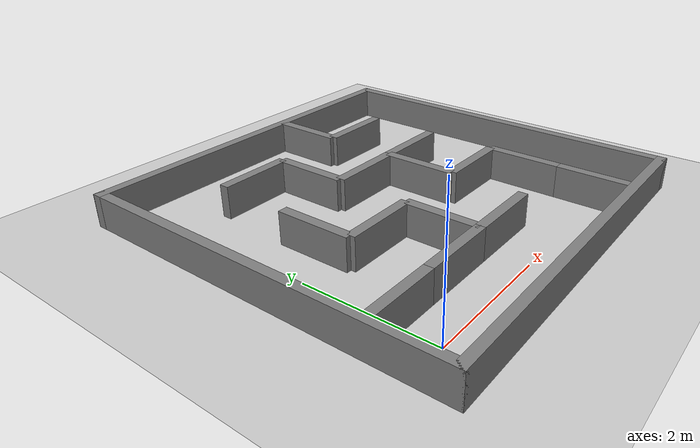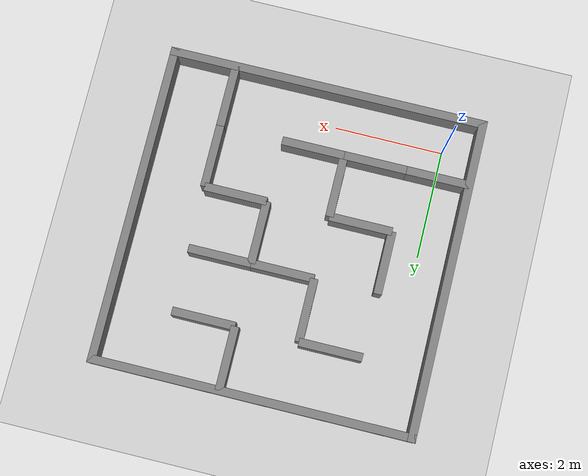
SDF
<?xml version="1.0" ?>
<sdf version="1.6">
  <world name="maze_world">
    <include><uri>model://sun</uri></include>
    <include><uri>model://ground_plane</uri></include>

    <model name="wall_0">
      <static>true</static>
      <pose>2.300 -0.575 0.250 0 0 0</pose>
      <link name="link">
        <collision name="collision">
          <geometry><box><size>5.900 0.150 0.500</size></box></geometry>
        </collision>
        <visual name="visual">
          <geometry><box><size>5.900 0.150 0.500</size></box></geometry>
          <material>
            <ambient>0.3 0.3 0.3 1</ambient>
            <diffuse>0.5 0.5 0.5 1</diffuse>
          </material>
        </visual>
      </link>
    </model>
    <model name="wall_1">
      <static>true</static>
      <pose>2.300 5.175 0.250 0 0 0</pose>
      <link name="link">
        <collision name="collision">
          <geometry><box><size>5.900 0.150 0.500</size></box></geometry>
        </collision>
        <visual name="visual">
          <geometry><box><size>5.900 0.150 0.500</size></box></geometry>
          <material>
            <ambient>0.3 0.3 0.3 1</ambient>
            <diffuse>0.5 0.5 0.5 1</diffuse>
          </material>
        </visual>
      </link>
    </model>
    <model name="wall_2">
      <static>true</static>
      <pose>-0.575 2.300 0.250 0 0 0</pose>
      <link name="link">
        <collision name="collision">
          <geometry><box><size>0.150 5.900 0.500</size></box></geometry>
        </collision>
        <visual name="visual">
          <geometry><box><size>0.150 5.900 0.500</size></box></geometry>
          <material>
            <ambient>0.3 0.3 0.3 1</ambient>
            <diffuse>0.5 0.5 0.5 1</diffuse>
          </material>
        </visual>
      </link>
    </model>
    <model name="wall_3">
      <static>true</static>
      <pose>5.175 2.300 0.250 0 0 0</pose>
      <link name="link">
        <collision name="collision">
          <geometry><box><size>0.150 5.900 0.500</size></box></geometry>
        </collision>
        <visual name="visual">
          <geometry><box><size>0.150 5.900 0.500</size></box></geometry>
          <material>
            <ambient>0.3 0.3 0.3 1</ambient>
            <diffuse>0.5 0.5 0.5 1</diffuse>
          </material>
        </visual>
      </link>
    </model>
    <model name="wall_4">
      <static>true</static>
      <pose>0.000 0.575 0.250 0 0 0</pose>
      <link name="link">
        <collision name="collision">
          <geometry><box><size>1.150 0.150 0.500</size></box></geometry>
        </collision>
        <visual name="visual">
          <geometry><box><size>1.150 0.150 0.500</size></box></geometry>
          <material>
            <ambient>0.3 0.3 0.3 1</ambient>
            <diffuse>0.5 0.5 0.5 1</diffuse>
          </material>
        </visual>
      </link>
    </model>
    <model name="wall_5">
      <static>true</static>
      <pose>1.150 0.575 0.250 0 0 0</pose>
      <link name="link">
        <collision name="collision">
          <geometry><box><size>1.150 0.150 0.500</size></box></geometry>
        </collision>
        <visual name="visual">
          <geometry><box><size>1.150 0.150 0.500</size></box></geometry>
          <material>
            <ambient>0.3 0.3 0.3 1</ambient>
            <diffuse>0.5 0.5 0.5 1</diffuse>
          </material>
        </visual>
      </link>
    </model>
    <model name="wall_6">
      <static>true</static>
      <pose>2.300 0.575 0.250 0 0 0</pose>
      <link name="link">
        <collision name="collision">
          <geometry><box><size>1.150 0.150 0.500</size></box></geometry>
        </collision>
        <visual name="visual">
          <geometry><box><size>1.150 0.150 0.500</size></box></geometry>
          <material>
            <ambient>0.3 0.3 0.3 1</ambient>
            <diffuse>0.5 0.5 0.5 1</diffuse>
          </material>
        </visual>
      </link>
    </model>
    <model name="wall_7">
      <static>true</static>
      <pose>4.025 0.000 0.250 0 0 0</pose>
      <link name="link">
        <collision name="collision">
          <geometry><box><size>0.150 1.150 0.500</size></box></geometry>
        </collision>
        <visual name="visual">
          <geometry><box><size>0.150 1.150 0.500</size></box></geometry>
          <material>
            <ambient>0.3 0.3 0.3 1</ambient>
            <diffuse>0.5 0.5 0.5 1</diffuse>
          </material>
        </visual>
      </link>
    </model>
    <model name="wall_8">
      <static>true</static>
      <pose>1.725 1.150 0.250 0 0 0</pose>
      <link name="link">
        <collision name="collision">
          <geometry><box><size>0.150 1.150 0.500</size></box></geometry>
        </collision>
        <visual name="visual">
          <geometry><box><size>0.150 1.150 0.500</size></box></geometry>
          <material>
            <ambient>0.3 0.3 0.3 1</ambient>
            <diffuse>0.5 0.5 0.5 1</diffuse>
          </material>
        </visual>
      </link>
    </model>
    <model name="wall_9">
      <static>true</static>
      <pose>1.150 1.725 0.250 0 0 0</pose>
      <link name="link">
        <collision name="collision">
          <geometry><box><size>1.150 0.150 0.500</size></box></geometry>
        </collision>
        <visual name="visual">
          <geometry><box><size>1.150 0.150 0.500</size></box></geometry>
          <material>
            <ambient>0.3 0.3 0.3 1</ambient>
            <diffuse>0.5 0.5 0.5 1</diffuse>
          </material>
        </visual>
      </link>
    </model>
    <model name="wall_10">
      <static>true</static>
      <pose>4.025 1.150 0.250 0 0 0</pose>
      <link name="link">
        <collision name="collision">
          <geometry><box><size>0.150 1.150 0.500</size></box></geometry>
        </collision>
        <visual name="visual">
          <geometry><box><size>0.150 1.150 0.500</size></box></geometry>
          <material>
            <ambient>0.3 0.3 0.3 1</ambient>
            <diffuse>0.5 0.5 0.5 1</diffuse>
          </material>
        </visual>
      </link>
    </model>
    <model name="wall_11">
      <static>true</static>
      <pose>3.450 1.725 0.250 0 0 0</pose>
      <link name="link">
        <collision name="collision">
          <geometry><box><size>1.150 0.150 0.500</size></box></geometry>
        </collision>
        <visual name="visual">
          <geometry><box><size>1.150 0.150 0.500</size></box></geometry>
          <material>
            <ambient>0.3 0.3 0.3 1</ambient>
            <diffuse>0.5 0.5 0.5 1</diffuse>
          </material>
        </visual>
      </link>
    </model>
    <model name="wall_12">
      <static>true</static>
      <pose>0.575 2.300 0.250 0 0 0</pose>
      <link name="link">
        <collision name="collision">
          <geometry><box><size>0.150 1.150 0.500</size></box></geometry>
        </collision>
        <visual name="visual">
          <geometry><box><size>0.150 1.150 0.500</size></box></geometry>
          <material>
            <ambient>0.3 0.3 0.3 1</ambient>
            <diffuse>0.5 0.5 0.5 1</diffuse>
          </material>
        </visual>
      </link>
    </model>
    <model name="wall_13">
      <static>true</static>
      <pose>2.875 2.300 0.250 0 0 0</pose>
      <link name="link">
        <collision name="collision">
          <geometry><box><size>0.150 1.150 0.500</size></box></geometry>
        </collision>
        <visual name="visual">
          <geometry><box><size>0.150 1.150 0.500</size></box></geometry>
          <material>
            <ambient>0.3 0.3 0.3 1</ambient>
            <diffuse>0.5 0.5 0.5 1</diffuse>
          </material>
        </visual>
      </link>
    </model>
    <model name="wall_14">
      <static>true</static>
      <pose>2.300 2.875 0.250 0 0 0</pose>
      <link name="link">
        <collision name="collision">
          <geometry><box><size>1.150 0.150 0.500</size></box></geometry>
        </collision>
        <visual name="visual">
          <geometry><box><size>1.150 0.150 0.500</size></box></geometry>
          <material>
            <ambient>0.3 0.3 0.3 1</ambient>
            <diffuse>0.5 0.5 0.5 1</diffuse>
          </material>
        </visual>
      </link>
    </model>
    <model name="wall_15">
      <static>true</static>
      <pose>3.450 2.875 0.250 0 0 0</pose>
      <link name="link">
        <collision name="collision">
          <geometry><box><size>1.150 0.150 0.500</size></box></geometry>
        </collision>
        <visual name="visual">
          <geometry><box><size>1.150 0.150 0.500</size></box></geometry>
          <material>
            <ambient>0.3 0.3 0.3 1</ambient>
            <diffuse>0.5 0.5 0.5 1</diffuse>
          </material>
        </visual>
      </link>
    </model>
    <model name="wall_16">
      <static>true</static>
      <pose>1.725 3.450 0.250 0 0 0</pose>
      <link name="link">
        <collision name="collision">
          <geometry><box><size>0.150 1.150 0.500</size></box></geometry>
        </collision>
        <visual name="visual">
          <geometry><box><size>0.150 1.150 0.500</size></box></geometry>
          <material>
            <ambient>0.3 0.3 0.3 1</ambient>
            <diffuse>0.5 0.5 0.5 1</diffuse>
          </material>
        </visual>
      </link>
    </model>
    <model name="wall_17">
      <static>true</static>
      <pose>1.150 4.025 0.250 0 0 0</pose>
      <link name="link">
        <collision name="collision">
          <geometry><box><size>1.150 0.150 0.500</size></box></geometry>
        </collision>
        <visual name="visual">
          <geometry><box><size>1.150 0.150 0.500</size></box></geometry>
          <material>
            <ambient>0.3 0.3 0.3 1</ambient>
            <diffuse>0.5 0.5 0.5 1</diffuse>
          </material>
        </visual>
      </link>
    </model>
    <model name="wall_18">
      <static>true</static>
      <pose>3.450 4.025 0.250 0 0 0</pose>
      <link name="link">
        <collision name="collision">
          <geometry><box><size>1.150 0.150 0.500</size></box></geometry>
        </collision>
        <visual name="visual">
          <geometry><box><size>1.150 0.150 0.500</size></box></geometry>
          <material>
            <ambient>0.3 0.3 0.3 1</ambient>
            <diffuse>0.5 0.5 0.5 1</diffuse>
          </material>
        </visual>
      </link>
    </model>
    <model name="wall_19">
      <static>true</static>
      <pose>2.875 4.600 0.250 0 0 0</pose>
      <link name="link">
        <collision name="collision">
          <geometry><box><size>0.150 1.150 0.500</size></box></geometry>
        </collision>
        <visual name="visual">
          <geometry><box><size>0.150 1.150 0.500</size></box></geometry>
          <material>
            <ambient>0.3 0.3 0.3 1</ambient>
            <diffuse>0.5 0.5 0.5 1</diffuse>
          </material>
        </visual>
      </link>
    </model>
    <physics type="ode">
      <max_step_size>0.001</max_step_size>
      <real_time_factor>1.0</real_time_factor>
      <real_time_update_rate>1000</real_time_update_rate>
    </physics>
  </world>
</sdf>
